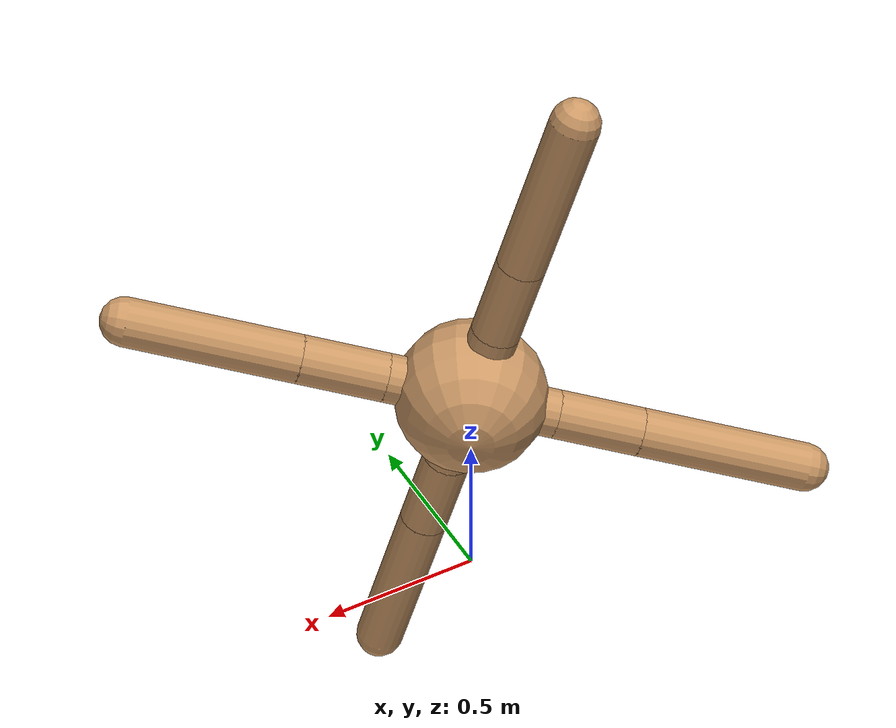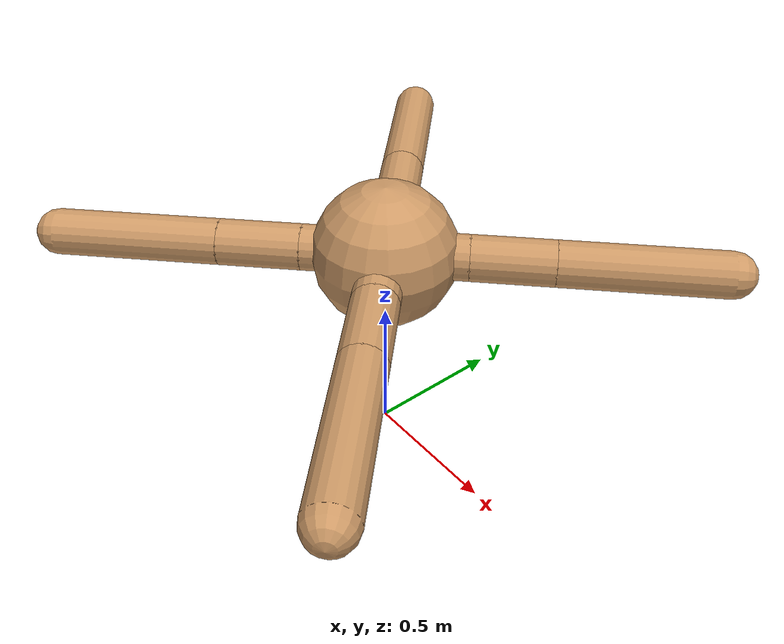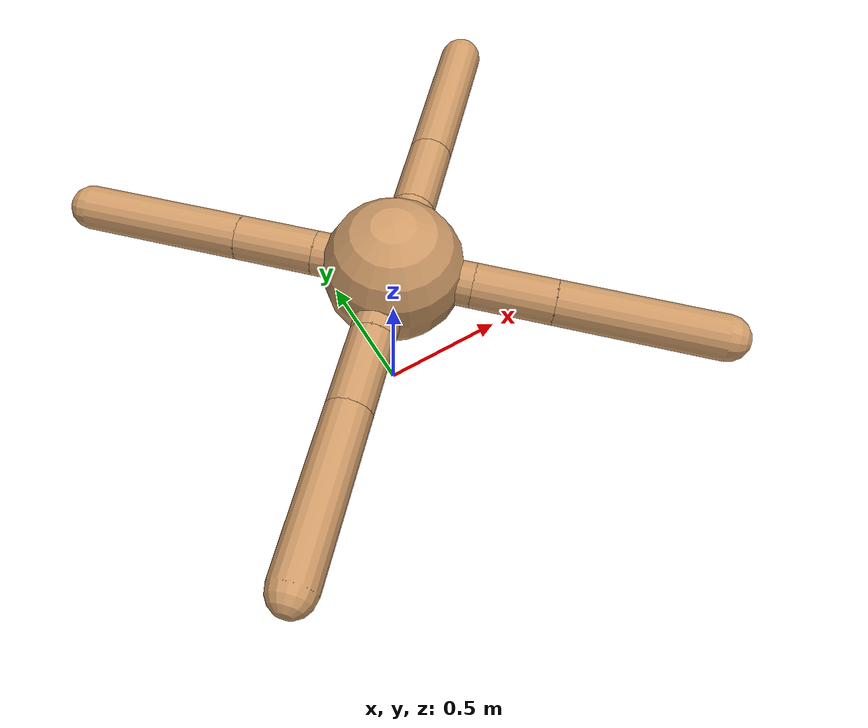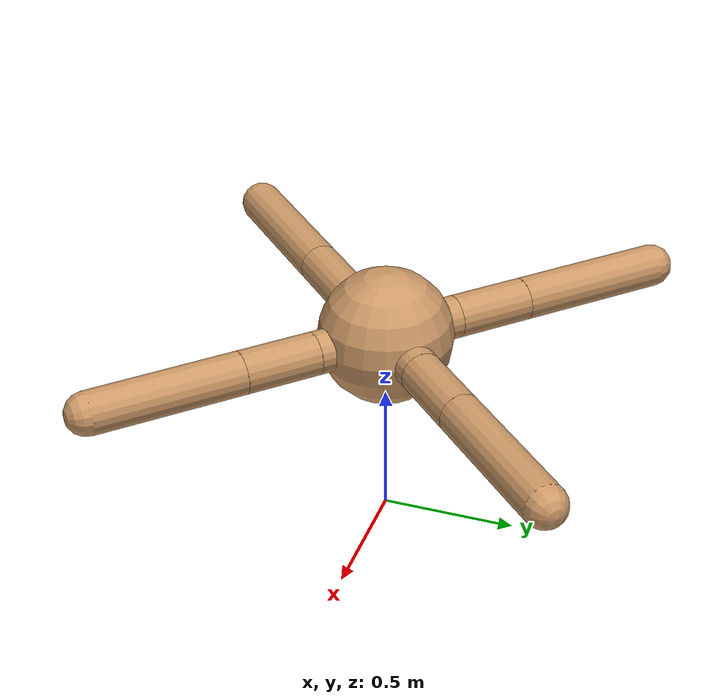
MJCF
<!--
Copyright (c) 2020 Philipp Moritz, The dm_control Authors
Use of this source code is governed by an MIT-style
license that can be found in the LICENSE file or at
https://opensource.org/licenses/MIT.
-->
<mujoco model="ant">
    <!-- openai -->
  <compiler angle="radian"/>
  <default>
    <motor ctrlrange="-1.0 1.0" ctrllimited="true" gear="150"/>
    <!-- dm_control configuration -->
    <!-- openai_gym configuration -->
    <joint armature="1" damping="1" limited="true"/>
    <geom conaffinity="0" condim="3" density="5.0" friction="1 0.5 0.5" margin="0.01" material="self"/>
    <default class="rangefinder">
        <site type="capsule" size=".05 .5" rgba="1 0 0 .4" group="4"/>
    </default>
  </default>
  <asset>
    <material name="self" rgba=".8 .6 .4 1"/>
  </asset>
  <worldbody>
    <camera name="sideon" pos="0 -3 3" euler="0.7854 0 0" mode="trackcom"/>
    <camera name="float_far"  pos="-4 0 2" xyaxes="0 -1 0 .5 0 1" mode="trackcom" fovy="90"/>
    <body name="torso" pos="0 0 0.75">
      <camera name="floating"  pos="-2 0 1" xyaxes="0 -1 0 .5 0 1" mode="trackcom" fovy="90"/>
      <camera name="egocentric"  pos=".25 0 .11" xyaxes="0 -1 0 0 0 1" fovy="90" />

      <site name="torso_touch" type="box" size="0.26 0.26 0.26" rgba="0 0 1 1" group="4"/>
      <geom name="torso_geom" type="sphere" size="0.25" density="100.0"/>
      <site name="torso_site" size="0.05" rgba="1 0 0 1"/>

      <site name="rf_xp" class="rangefinder" pos="0.25 0 0.11" zaxis="1 0 0"/>
      <site name="rf_xpd_10" class="rangefinder" pos="0.25 0 0.11" xyaxes="-1 0 -5.6713 0 1 0"/>  <!-- 10 degree -->
      <site name="rf_xpd_20" class="rangefinder" pos="0.25 0 0.11" xyaxes="-1 0 -2.7475 0 1 0"/>  <!-- 20 degree -->
      <site name="rf_xpd_30" class="rangefinder" pos="0.25 0 0.11" xyaxes="-1 0 -1.7321 0 1 0"/>  <!-- 30 degree -->
      <site name="rf_xpd_40" class="rangefinder" pos="0.25 0 0.11" xyaxes="-1 0 -1.1918 0 1 0"/>  <!-- 40 degree -->
      <site name="rf_xpd_50" class="rangefinder" pos="0.25 0 0.11" xyaxes="-1 0 -0.8391 0 1 0"/>  <!-- 50 degree -->
      <site name="rf_xpd_60" class="rangefinder" pos="0.25 0 0.11" xyaxes="-1 0 -0.5774 0 1 0"/>  <!-- 60 degree -->
      <site name="rf_xpyp" class="rangefinder" pos="0.25 0 0.11" zaxis="1 1 0"/>
      <site name="rf_xpyn" class="rangefinder" pos="0.25 0 0.11"  zaxis="1 -1 0"/>

      <!-- sites that visualize the x-y axis of the ant body, good for debugging -->
      <site name="x_pos" type="capsule" pos="0.5 0 0" size=".05 .5" zaxis="1 0 0" rgba="1 0 0 1" group="5"/>
      <site name="x_neg" type="capsule" pos="-0.5 0 0" size=".05 .5"  zaxis="-1 0 0" rgba="0 0 1 1"  group="5"/>
      <site name="y_pos" type="capsule" pos="0 0.5 0" size=".05 .5"  zaxis="0 1 0" rgba="1 1 1 1" group="5"/>
      <site name="y_neg" type="capsule" pos="0 -0.5 0" size=".05 .5"  zaxis="0 -1 0" rgba="0 0 0 1" group="5"/>
      <site name="port_site" pos=".5 0 0" size="0.5" rgba="1 0 0 1" group="5"/>
      <site name="starboard_site" pos="-.5 0 0" size="0.5" rgba="0 1 0 1" group="5"/>

      <site name="rc1" type="sphere" size=".1" rgba="1 1 1 1"/>
      <site name="rc2" type="sphere" size=".1" rgba="1 1 1 1"/>
      <site name="rc3" type="sphere" size=".1" rgba="1 1 1 1"/>
      <site name="rc4" type="sphere" size=".1" rgba="1 1 1 1"/>
      <site name="rc5" type="sphere" size=".1" rgba="1 1 1 1"/>
      <site name="rc6" type="sphere" size=".1" rgba="1 1 1 1"/>
      <site name="rc7" type="sphere" size=".1" rgba="1 1 1 1"/>
      <site name="rc8" type="sphere" size=".1" rgba="1 1 1 1"/>
      <site name="rc9" type="sphere" size=".1" rgba="1 1 1 1"/>
      <site name="rc10" type="sphere" size=".1" rgba="1 1 1 1"/>

      <body name="front_left_leg">
        <geom name="front_left_aux_geom" type="capsule" size="0.08" fromto="0.0 0.0 0.0 0.2 0.2 0.0"/>
        <body name="front_left_aux" pos="0.2 0.2 0">
          <joint name="front_left_hip" axis="0 0 1" range="-0.52359 0.52359" type="hinge"/>
          <geom name="front_left_leg_geom" type="capsule" size="0.08" fromto="0.0 0.0 0.0 0.2 0.2 0.0"/>
          <site name="front_left_leg_touch" type="box" pos="0.1 0.1 0" size="0.09 0.09 0.24" zaxis="0.2 0.2 0" rgba="1 1 0 0"/>
          <body name="front_left_foot" pos="0.2 0.2 0">
            <joint name="front_left_ankle" type="hinge" pos="0.0 0.0 0.0" axis="-1 1 0" range="0.52359 1.22173"/>
            <geom name="front_left_ankle_geom" type="capsule" size="0.08" fromto="0.0 0.0 0.0 0.4 0.4 0.0"/>
            <site name="front_left_ankle_touch" type="box" pos="0.2 0.2 0" size="0.1 0.1 0.45" zaxis="0.2 0.2 0.0" rgba="1 1 0 0" />
          </body>
        </body>
      </body>

      <body name="front_right_leg">
        <geom name="front_right_aux_geom" type="capsule" size="0.08" fromto="0.0 0.0 0.0 0.2 -0.2 0.0"/>
        <body name="front_right_aux" pos="0.2 -0.2 0">
          <joint name="front_right_hip" axis="0 0 1" range="-0.52359 0.52359" type="hinge"/>
          <geom name="front_right_leg_geom" type="capsule" size="0.08" fromto="0.0 0.0 0.0 0.2 -0.2 0.0"/>
          <site name="front_right_leg_touch" type="box" pos="0.1 -0.1 0" size="0.09 0.09 0.24" zaxis="0.2 -0.2 0.0" rgba="0 0 1 0"/>
          <body name="front_right_foot" pos="0.2 -0.2 0">
            <joint name="front_right_ankle" type="hinge" pos="0.0 0.0 0.0" axis="1 1 0" range="0.52359 1.22173"/>
            <geom name="front_right_ankle_geom" type="capsule" size="0.08" fromto="0.0 0.0 0.0 0.4 -0.4 0.0"/>
            <site name="front_right_ankle_touch" type="box" pos="0.2 -0.2 0" size="0.09 0.09 0.39" zaxis="0.2 -0.2 0.0" rgba="0 0 1 0"/>
          </body>
        </body>
      </body>

      <body name="back_right_leg">
        <geom name="back_right_aux_geom" type="capsule" size="0.08" fromto="0.0 0.0 0.0 -0.2 -0.2 0.0"/>
        <body name="back_right_aux" pos="-0.2 -0.2 0">
          <joint name="back_right_hip" axis="0 0 1" range="-0.52359 0.52359" type="hinge"/>
          <geom name="back_right_leg_geom" type="capsule" size="0.08" fromto="0.0 0.0 0.0 -0.2 -0.2 0.0"/>
          <site name="back_right_leg_touch" type="box" pos="-0.1 -0.1 0" size="0.09 0.09 0.24" zaxis="-0.2 -0.2 0.0" rgba="0 0 1 0"/>
          <body name="back_right_foot" pos="-0.2 -0.2 0">
            <joint name="back_right_ankle" type="hinge" pos="0.0 0.0 0.0" axis="-1 1 0" range="-1.22173 -0.52359"/>
            <geom name="back_right_ankle_geom" type="capsule" size="0.08" fromto="0.0 0.0 0.0 -0.4 -0.4 0.0"/>
            <site name="back_right_ankle_touch" type="box" pos="-0.2 -0.2 0" size="0.09 0.09 0.39" zaxis="-0.2 -0.2 0.0" rgba="0 0 1 0"/>
          </body>
        </body>
      </body>

      <body name="back_left_leg">
        <geom name="back_left_aux_geom" type="capsule" size="0.08" fromto="0.0 0.0 0.0 -0.2 0.2 0.0"/>
        <body name="back_left_aux" pos="-0.2 0.2 0">
          <joint name="back_left_hip" axis="0 0 1" range="-0.52359 0.52359" type="hinge"/>
          <geom name="back_left_leg_geom" type="capsule" size="0.08" fromto="0.0 0.0 0.0 -0.2 0.2 0.0"/>
          <site name="back_left_leg_touch" type="box" pos="-0.1 0.1 0" size="0.09 0.09 0.24" zaxis="-0.2 0.2 0.0" rgba="0 0 1 0"/>
          <body name="back_left_foot" pos="-0.2 0.2 0">
            <joint name="back_left_ankle" type="hinge" pos="0.0 0.0 0.0" axis="1 1 0" range="-1.22173 -0.52359" />
            <geom name="back_left_ankle_geom" type="capsule" size="0.08" fromto="0.0 0.0 0.0 -0.4 0.4 0.0"/>
            <site name="back_left_ankle_touch" type="box" pos="-0.2 0.2 0" size="0.09 0.09 0.39" zaxis="-0.2 0.2 0.0" rgba="0 0 1 0"/>
          </body>
        </body>
      </body>

    </body>
  </worldbody>

  <actuator>
    <motor name="front_left_hip"   joint="front_left_hip"/>
    <motor name="front_left_ankle" joint="front_left_ankle"/>
    <motor name="front_right_hip"   joint="front_right_hip"/>
    <motor name="front_right_ankle" joint="front_right_ankle"/>
    <motor name="back_right_hip"   joint="back_right_hip"/>
    <motor name="back_right_ankle" joint="back_right_ankle"/>
    <motor name="back_left_hip"   joint="back_left_hip"/>
    <motor name="back_left_ankle" joint="back_left_ankle"/>
  </actuator>

  <sensor>
    <touch name="torso_touch" site="torso_touch"/>
    <touch name="front_left_leg_touch" site="front_left_leg_touch"/>
    <touch name="front_left_ankle_touch" site="front_left_ankle_touch"/>
    <touch name="back_left_leg_touch" site="back_left_leg_touch"/>
    <touch name="back_left_ankle_touch" site="back_left_ankle_touch"/>
    <touch name="back_right_leg_touch" site="back_right_leg_touch"/>
    <touch name="back_right_ankle_touch" site="back_right_ankle_touch"/>
    <touch name="front_right_leg_touch" site="front_right_leg_touch"/>
    <touch name="front_right_ankle_touch" site="front_right_ankle_touch"/>
    <velocimeter name="torso_vel" site="torso_site"/>
    <gyro name="torso_gyro" site="torso_site"/>
    <accelerometer name="torso_accel" site="torso_site"/>
    <rangefinder name="rf_xp" site="rf_xp"/>
    <rangefinder name="rf_xpd_10" site="rf_xpd_10"/>
    <rangefinder name="rf_xpd_20" site="rf_xpd_20"/>
    <rangefinder name="rf_xpd_30" site="rf_xpd_30"/>
    <rangefinder name="rf_xpd_40" site="rf_xpd_40"/>
    <rangefinder name="rf_xpd_50" site="rf_xpd_50"/>
    <rangefinder name="rf_xpd_60" site="rf_xpd_60"/>
    <rangefinder name="rf_xpyp" site="rf_xpyp"/>
    <rangefinder name="rf_xpyn" site="rf_xpyn"/>
  </sensor>

  <contact>
    <exclude body1="torso" body2="front_left_aux"/>
    <exclude body1="torso" body2="front_right_aux"/>
    <exclude body1="torso" body2="back_right_aux"/>
    <exclude body1="torso" body2="back_left_aux"/>
  </contact>
</mujoco>
